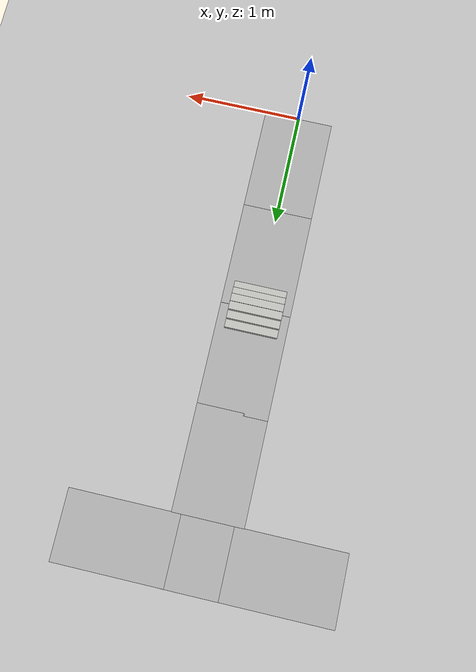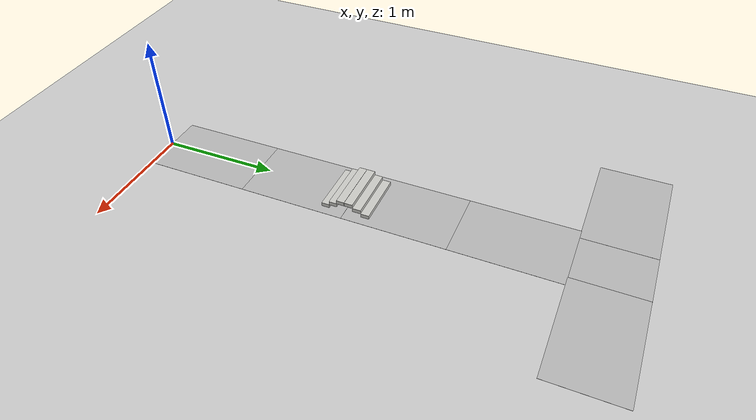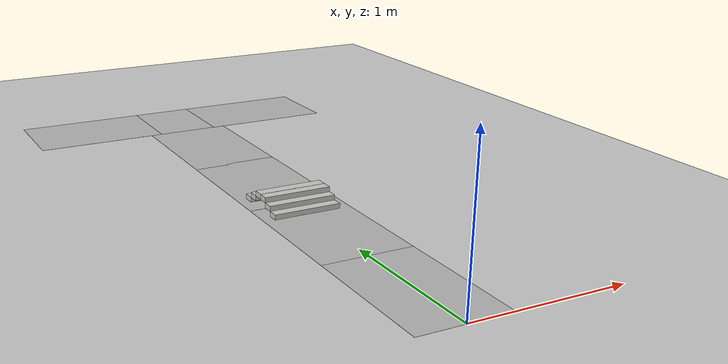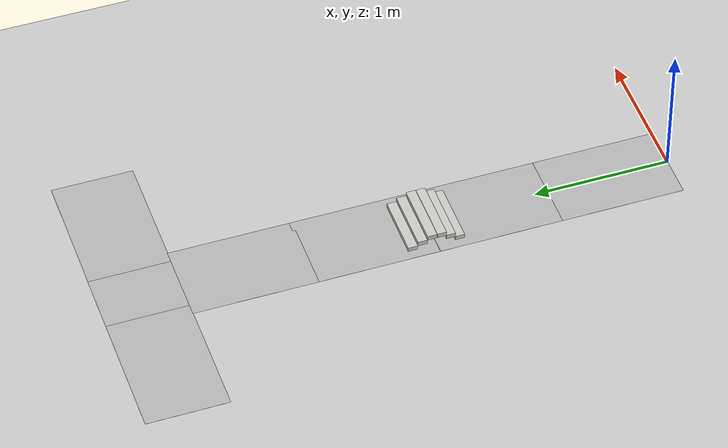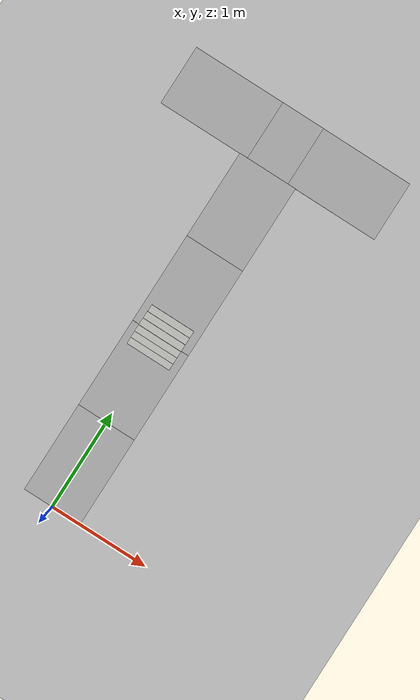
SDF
<sdf version="1.6">
 <world name="default">
  <model name="ground_plane">
   <static>1</static>
   <link name="link">
    <collision name="collision">
     <geometry><plane><normal>0 0 1</normal><size>100 100</size></plane></geometry>
     <surface>
      <contact><collide_bitmask>65535</collide_bitmask></contact>
      <friction><ode><mu>100</mu><mu2>50</mu2></ode></friction>
     </surface>
    </collision>
    <visual name="visual">
     <cast_shadows>0</cast_shadows>
     <geometry><plane><normal>0 0 1</normal><size>100 100</size></plane></geometry>
     <material>
      <script><uri>file://media/materials/scripts/gazebo.material</uri><name>Gazebo/Grey</name></script>
     </material>
    </visual>
   </link>
  </model>
  <light name="sun" type="directional">
   <pose>0 0 10 0 -0 0</pose>
   <diffuse>0.8 0.8 0.8 1</diffuse>
   <specular>0.2 0.2 0.2 1</specular>
   <attenuation>
    <range>1000</range>
    <constant>0.9</constant>
    <linear>0.01</linear>
    <quadratic>0.001</quadratic>
   </attenuation>
   <direction>-0.5 0.1 -0.9</direction>
  </light>
  <gravity>0 0 -9.8</gravity>
  <magnetic_field>6e-06 2.3e-05 -4.2e-05</magnetic_field>
  <atmosphere type="adiabatic"/>
  <physics name="default_physics" default="0" type="ode">
   <max_step_size>0.001</max_step_size>
   <real_time_factor>1</real_time_factor>
   <real_time_update_rate>1000</real_time_update_rate>
  </physics>
  <scene><ambient>0.4 0.4 0.4 1</ambient><background>0.7 0.7 0.7 1</background><shadows>1</shadows></scene>
  <audio><device>default</device></audio>
  <spherical_coordinates>
   <surface_model>EARTH_WGS84</surface_model>
   <latitude_deg>0</latitude_deg>
   <longitude_deg>0</longitude_deg>
   <elevation>0</elevation>
   <heading_deg>0</heading_deg>
  </spherical_coordinates>
  <model name="vc_black_track_set">
   <static>1</static>
   <link name="link">
    <collision name="collision">
     <geometry><plane><normal>0 0 1</normal><size>0.596 0.905</size></plane></geometry>
     <surface><friction><ode><mu>100</mu><mu2>50</mu2></ode></friction></surface>
    </collision>
    <visual name="visual">
     <cast_shadows>0</cast_shadows>
     <geometry><plane><normal>0 0 1</normal><size>0.596 0.905</size></plane></geometry>
     <material>
      <script>
       <uri>model://vc_black_track_set/materials/scripts</uri>
       <uri>model://vc_black_track_set/materials/textures/</uri>
       <name>VC_Black_Track_Set/Image</name>
      </script>
     </material>
    </visual>
   </link>
   <pose>0 0.452263 0 0 -0 0</pose>
  </model>
  <model name="vc_black_track_straight">
   <static>1</static>
   <link name="link">
    <collision name="collision">
     <geometry><plane><normal>0 0 1</normal><size>0.596 0.905</size></plane></geometry>
     <surface><friction><ode><mu>100</mu><mu2>50</mu2></ode></friction></surface>
    </collision>
    <visual name="visual">
     <cast_shadows>0</cast_shadows>
     <geometry><plane><normal>0 0 1</normal><size>0.596 0.905</size></plane></geometry>
     <material>
      <script>
       <uri>model://vc_black_track_straight/materials/scripts</uri>
       <uri>model://vc_black_track_straight/materials/textures/</uri>
       <name>VC_Black_Track_Straight/Image</name>
      </script>
     </material>
    </visual>
   </link>
   <pose>0 1.35439 0 0 -0 0</pose>
  </model>
  <model name="vc_black_track_straight_0">
   <static>1</static>
   <link name="link">
    <collision name="collision">
     <geometry><plane><normal>0 0 1</normal><size>0.596 0.905</size></plane></geometry>
     <surface><friction><ode><mu>100</mu><mu2>50</mu2></ode></friction></surface>
    </collision>
    <visual name="visual">
     <cast_shadows>0</cast_shadows>
     <geometry><plane><normal>0 0 1</normal><size>0.596 0.905</size></plane></geometry>
     <material>
      <script>
       <uri>model://vc_black_track_straight/materials/scripts</uri>
       <uri>model://vc_black_track_straight/materials/textures/</uri>
       <name>VC_Black_Track_Straight/Image</name>
      </script>
     </material>
    </visual>
   </link>
   <pose>0 2.26015 0 0 -0 0</pose>
  </model>
  <model name="vc_black_track_straight_1">
   <static>1</static>
   <link name="link">
    <collision name="collision">
     <geometry><plane><normal>0 0 1</normal><size>0.596 0.905</size></plane></geometry>
     <surface><friction><ode><mu>100</mu><mu2>50</mu2></ode></friction></surface>
    </collision>
    <visual name="visual">
     <cast_shadows>0</cast_shadows>
     <geometry><plane><normal>0 0 1</normal><size>0.596 0.905</size></plane></geometry>
     <material>
      <script>
       <uri>model://vc_black_track_straight/materials/scripts</uri>
       <uri>model://vc_black_track_straight/materials/textures/</uri>
       <name>VC_Black_Track_Straight/Image</name>
      </script>
     </material>
    </visual>
   </link>
   <pose>0 3.1426 0 0 -0 0</pose>
  </model>
  <model name="vc_black_track_turn">
   <static>1</static>
   <link name="link">
    <collision name="collision">
     <geometry><plane><normal>0 0 1</normal><size>0.596 0.5</size></plane></geometry>
     <surface><friction><ode><mu>100</mu><mu2>50</mu2></ode></friction></surface>
    </collision>
    <visual name="visual">
     <cast_shadows>0</cast_shadows>
     <geometry><plane><normal>0 0 1</normal><size>0.596 0.5</size></plane></geometry>
     <material>
      <script>
       <uri>model://vc_black_track_turn/materials/scripts</uri>
       <uri>model://vc_black_track_turn/materials/textures/</uri>
       <name>VC_Black_Track_Turn/Image</name>
      </script>
     </material>
    </visual>
   </link>
   <pose>-0.001532 3.891 0 0 0 -1.57</pose>
  </model>
  <model name="vc_black_track_goal">
   <static>1</static>
   <link name="link">
    <collision name="collision">
     <geometry><plane><normal>0 0 1</normal><size>0.596 0.925</size></plane></geometry>
     <surface><friction><ode><mu>100</mu><mu2>50</mu2></ode></friction></surface>
    </collision>
    <visual name="visual">
     <cast_shadows>0</cast_shadows>
     <geometry><plane><normal>0 0 1</normal><size>0.596 0.925</size></plane></geometry>
     <material>
      <script>
       <uri>model://vc_black_track_goal/materials/scripts</uri>
       <uri>model://vc_black_track_goal/materials/textures/</uri>
       <name>VC_Black_Track_Goal/Image</name>
      </script>
     </material>
    </visual>
   </link>
   <pose>0.68 3.89 0 0 -0 1.57</pose>
  </model>
  <model name="vc_black_track_goal_0">
   <static>1</static>
   <link name="link">
    <collision name="collision">
     <geometry><plane><normal>0 0 1</normal><size>0.596 0.925</size></plane></geometry>
     <surface><friction><ode><mu>100</mu><mu2>50</mu2></ode></friction></surface>
    </collision>
    <visual name="visual">
     <cast_shadows>0</cast_shadows>
     <geometry><plane><normal>0 0 1</normal><size>0.596 0.925</size></plane></geometry>
     <material>
      <script>
       <uri>model://vc_black_track_goal/materials/scripts</uri>
       <uri>model://vc_black_track_goal/materials/textures/</uri>
       <name>VC_Black_Track_Goal/Image</name>
      </script>
     </material>
    </visual>
   </link>
   <pose>-0.68 3.89 0 0 0 -1.57</pose>
  </model>
  <model name="vc_stairs">
   <pose>-0.002279 1.81235 0 0 -0 0</pose>
   <link name="Stairs_1">
    <visual name="Stairs_1_Visual_0">
     <pose>0.000167 0.171477 0.016667 0 -0 0</pose>
     <geometry><box><size>0.45 0.070667 0.033333</size></box></geometry>
     <material>
      <script><uri>file://media/materials/scripts/gazebo.material</uri><name>Gazebo/CeilingTiled</name></script>
      <ambient>0.996078 0.47451 0.0196078 1</ambient>
     </material>
     <meta><layer>0</layer></meta>
    </visual>
    <collision name="Stairs_1_Collision_0">
     <geometry><box><size>0.45 0.070667 0.033333</size></box></geometry>
     <pose>0.000167 0.171477 0.016667 0 -0 0</pose>
    </collision>
    <visual name="Stairs_1_Visual_1">
     <pose>0.000167 0.10081 0.05 0 -0 0</pose>
     <geometry><box><size>0.45 0.070667 0.033333</size></box></geometry>
     <material>
      <script><uri>file://media/materials/scripts/gazebo.material</uri><name>Gazebo/CeilingTiled</name></script>
      <ambient>0.996078 0.47451 0.0196078 1</ambient>
     </material>
     <meta><layer>0</layer></meta>
    </visual>
    <collision name="Stairs_1_Collision_1">
     <geometry><box><size>0.45 0.070667 0.033333</size></box></geometry>
     <pose>0.000167 0.10081 0.05 0 -0 0</pose>
    </collision>
    <visual name="Stairs_1_Visual_2">
     <pose>0.000167 0.030144 0.083333 0 -0 0</pose>
     <geometry><box><size>0.45 0.070667 0.033333</size></box></geometry>
     <material>
      <script><uri>file://media/materials/scripts/gazebo.material</uri><name>Gazebo/CeilingTiled</name></script>
      <ambient>0.996078 0.47451 0.0196078 1</ambient>
     </material>
     <meta><layer>0</layer></meta>
    </visual>
    <collision name="Stairs_1_Collision_2">
     <geometry><box><size>0.45 0.070667 0.033333</size></box></geometry>
     <pose>0.000167 0.030144 0.083333 0 -0 0</pose>
    </collision>
   </link>
   <link name="Stairs_3">
    <visual name="Stairs_3_Visual_0">
     <pose>-0.000167 -0.173477 0.016667 0 -0 -3.14159</pose>
     <geometry><box><size>0.45 0.066667 0.033333</size></box></geometry>
     <material>
      <script><uri>file://media/materials/scripts/gazebo.material</uri><name>Gazebo/CeilingTiled</name></script>
      <ambient>0.996078 0.47451 0.0196078 1</ambient>
     </material>
     <meta><layer>0</layer></meta>
    </visual>
    <collision name="Stairs_3_Collision_0">
     <geometry><box><size>0.45 0.066667 0.033333</size></box></geometry>
     <pose>-0.000167 -0.173477 0.016667 0 -0 -3.14159</pose>
    </collision>
    <visual name="Stairs_3_Visual_1">
     <pose>-0.000167 -0.10681 0.05 0 -0 -3.14159</pose>
     <geometry><box><size>0.45 0.066667 0.033333</size></box></geometry>
     <material>
      <script><uri>file://media/materials/scripts/gazebo.material</uri><name>Gazebo/CeilingTiled</name></script>
      <ambient>0.996078 0.47451 0.0196078 1</ambient>
     </material>
     <meta><layer>0</layer></meta>
    </visual>
    <collision name="Stairs_3_Collision_1">
     <geometry><box><size>0.45 0.066667 0.033333</size></box></geometry>
     <pose>-0.000167 -0.10681 0.05 0 -0 -3.14159</pose>
    </collision>
    <visual name="Stairs_3_Visual_2">
     <pose>-0.000167 -0.040144 0.083333 0 -0 -3.14159</pose>
     <geometry><box><size>0.45 0.066667 0.033333</size></box></geometry>
     <material>
      <script><uri>file://media/materials/scripts/gazebo.material</uri><name>Gazebo/CeilingTiled</name></script>
      <ambient>0.996078 0.47451 0.0196078 1</ambient>
     </material>
     <meta><layer>0</layer></meta>
    </visual>
    <collision name="Stairs_3_Collision_2">
     <geometry><box><size>0.45 0.066667 0.033333</size></box></geometry>
     <pose>-0.000167 -0.040144 0.083333 0 -0 -3.14159</pose>
    </collision>
   </link>
   <static>1</static>
  </model>
 </world>
</sdf>
